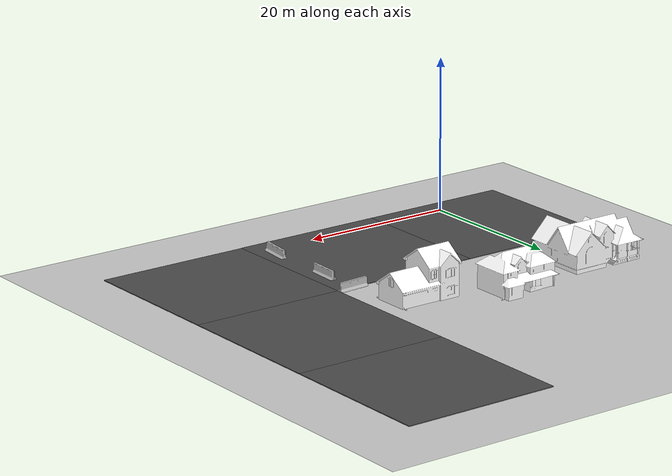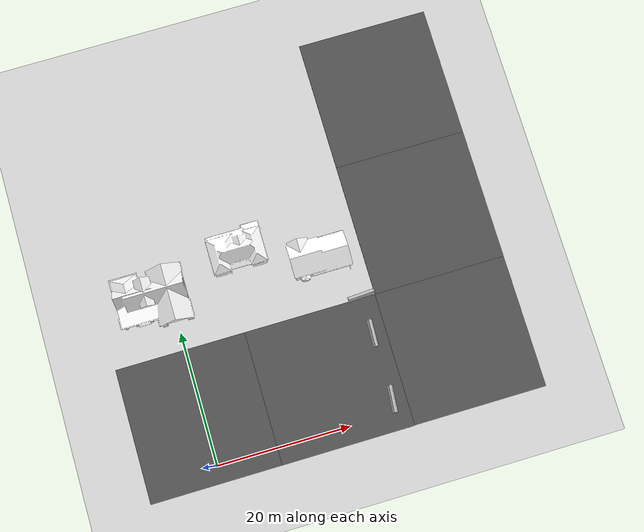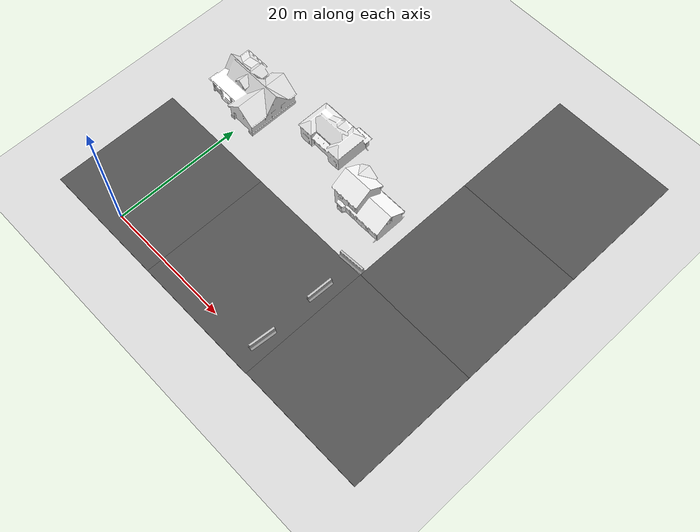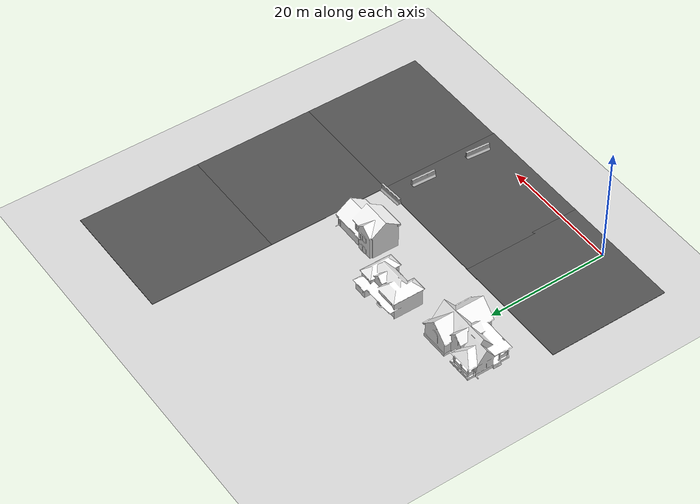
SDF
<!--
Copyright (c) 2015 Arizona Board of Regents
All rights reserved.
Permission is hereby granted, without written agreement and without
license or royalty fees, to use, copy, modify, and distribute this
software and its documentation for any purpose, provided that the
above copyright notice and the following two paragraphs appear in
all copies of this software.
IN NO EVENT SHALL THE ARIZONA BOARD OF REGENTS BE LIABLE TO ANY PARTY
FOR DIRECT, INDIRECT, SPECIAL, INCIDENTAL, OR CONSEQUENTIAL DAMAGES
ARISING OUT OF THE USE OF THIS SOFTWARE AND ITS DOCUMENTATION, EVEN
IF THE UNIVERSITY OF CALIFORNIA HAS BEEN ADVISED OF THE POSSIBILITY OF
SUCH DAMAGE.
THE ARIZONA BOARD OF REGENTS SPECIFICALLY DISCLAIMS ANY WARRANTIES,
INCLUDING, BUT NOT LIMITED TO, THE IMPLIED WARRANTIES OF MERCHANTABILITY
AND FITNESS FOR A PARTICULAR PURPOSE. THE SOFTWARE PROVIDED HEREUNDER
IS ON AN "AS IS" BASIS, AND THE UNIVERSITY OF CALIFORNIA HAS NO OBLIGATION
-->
<sdf version="1.4">
 <world name="default">
  <model name="ground_plane">
   <static>1</static>
   <link name="link">
    <collision name="collision">
     <geometry><plane><normal>0 0 1</normal><size>100 100</size></plane></geometry>
     <surface><friction><ode><mu>100</mu><mu2>50</mu2></ode></friction></surface>
    </collision>
    <visual name="visual">
     <cast_shadows>0</cast_shadows>
     <geometry><plane><normal>0 0 1</normal><size>100 100</size></plane></geometry>
     <material>
      <script><uri>file://media/materials/scripts/gazebo.material</uri><name>Gazebo/Grey</name></script>
     </material>
    </visual>
    <velocity_decay><linear>0</linear><angular>0</angular></velocity_decay>
   </link>
  </model>
  <light name="sun" type="directional">
   <pose>0 0 10 0 -0 0</pose>
   <diffuse>0.8 0.8 0.8 1</diffuse>
   <specular>0.2 0.2 0.2 1</specular>
   <attenuation>
    <range>1000</range>
    <constant>0.9</constant>
    <linear>0.01</linear>
    <quadratic>0.001</quadratic>
   </attenuation>
   <direction>-0.5 0.1 -0.9</direction>
  </light>
  <physics type="ode">
   <max_step_size>0.001</max_step_size>
   <real_time_factor>1</real_time_factor>
   <real_time_update_rate>1000</real_time_update_rate>
   <gravity>0 0 -9.8</gravity>
  </physics>
  <scene><ambient>0.4 0.4 0.4 1</ambient><background>0.7 0.7 0.7 1</background><shadows>1</shadows></scene>
  <spherical_coordinates>
   <surface_model>EARTH_WGS84</surface_model>
   <latitude_deg>0</latitude_deg>
   <longitude_deg>0</longitude_deg>
   <elevation>0</elevation>
   <heading_deg>0</heading_deg>
  </spherical_coordinates>
  <model name="asphalt_plane_3">
   <static>1</static>
   <link name="link">
    <collision name="collision"><geometry><box><size>20 20 0.1</size></box></geometry></collision>
    <visual name="visual">
     <cast_shadows>0</cast_shadows>
     <geometry><box><size>20 20 0.1</size></box></geometry>
     <material>
      <script>
       <uri>model://asphalt_plane/materials/scripts</uri>
       <uri>model://asphalt_plane/materials/textures</uri>
       <name>vrc/asphalt</name>
      </script>
     </material>
    </visual>
    <velocity_decay><linear>0</linear><angular>0</angular></velocity_decay>
   </link>
   <pose>-0.579832 7.43849 0 0 -0 0</pose>
  </model>
  <model name="asphalt_plane_4">
   <static>1</static>
   <link name="link">
    <collision name="collision"><geometry><box><size>20 20 0.1</size></box></geometry></collision>
    <visual name="visual">
     <cast_shadows>0</cast_shadows>
     <geometry><box><size>20 20 0.1</size></box></geometry>
     <material>
      <script>
       <uri>model://asphalt_plane/materials/scripts</uri>
       <uri>model://asphalt_plane/materials/textures</uri>
       <name>vrc/asphalt</name>
      </script>
     </material>
    </visual>
    <velocity_decay><linear>0</linear><angular>0</angular></velocity_decay>
   </link>
   <pose>19 7.43486 0 0 -0 0</pose>
  </model>
  <model name="asphalt_plane_6">
   <static>1</static>
   <link name="link">
    <collision name="collision"><geometry><box><size>20 20 0.1</size></box></geometry></collision>
    <visual name="visual">
     <cast_shadows>0</cast_shadows>
     <geometry><box><size>20 20 0.1</size></box></geometry>
     <material>
      <script>
       <uri>model://asphalt_plane/materials/scripts</uri>
       <uri>model://asphalt_plane/materials/textures</uri>
       <name>vrc/asphalt</name>
      </script>
     </material>
    </visual>
    <velocity_decay><linear>0</linear><angular>0</angular></velocity_decay>
   </link>
   <pose>39 7.49528 0 0 -0 0</pose>
  </model>
  <model name="asphalt_plane_7">
   <static>1</static>
   <link name="link">
    <collision name="collision"><geometry><box><size>20 20 0.1</size></box></geometry></collision>
    <visual name="visual">
     <cast_shadows>0</cast_shadows>
     <geometry><box><size>20 20 0.1</size></box></geometry>
     <material>
      <script>
       <uri>model://asphalt_plane/materials/scripts</uri>
       <uri>model://asphalt_plane/materials/textures</uri>
       <name>vrc/asphalt</name>
      </script>
     </material>
    </visual>
    <velocity_decay><linear>0</linear><angular>0</angular></velocity_decay>
   </link>
   <pose>39 27.4494 0 0 -0 0</pose>
  </model>
  <model name="asphalt_plane_9">
   <static>1</static>
   <link name="link">
    <collision name="collision"><geometry><box><size>20 20 0.1</size></box></geometry></collision>
    <visual name="visual">
     <cast_shadows>0</cast_shadows>
     <geometry><box><size>20 20 0.1</size></box></geometry>
     <material>
      <script>
       <uri>model://asphalt_plane/materials/scripts</uri>
       <uri>model://asphalt_plane/materials/textures</uri>
       <name>vrc/asphalt</name>
      </script>
     </material>
    </visual>
    <velocity_decay><linear>0</linear><angular>0</angular></velocity_decay>
   </link>
   <pose>39 47.4433 0 0 -0 0</pose>
  </model>
  <model name="House 1">
   <static>1</static>
   <link name="link">
    <collision name="collision">
     <geometry><mesh><uri>model://house_1/meshes/house_1.dae</uri></mesh></geometry>
    </collision>
    <visual name="visual">
     <geometry><mesh><uri>model://house_1/meshes/house_1.dae</uri></mesh></geometry>
     <material>
      <script>
       <uri>model://house_1/materials/scripts</uri>
       <uri>model://house_1/materials/textures</uri>
       <name>House_1/Diffuse</name>
      </script>
      <shader type="normal_map_object_space"><normal_map>House_1_Normal.png</normal_map></shader>
     </material>
    </visual>
    <velocity_decay><linear>0</linear><angular>0</angular></velocity_decay>
   </link>
   <pose>-2.40435 26 0 0 -0 0</pose>
  </model>
  <model name="House 2">
   <static>1</static>
   <link name="link">
    <collision name="collision">
     <geometry><mesh><uri>model://house_2/meshes/house_2.dae</uri></mesh></geometry>
    </collision>
    <visual name="visual">
     <geometry><mesh><uri>model://house_2/meshes/house_2.dae</uri></mesh></geometry>
     <material>
      <script>
       <uri>model://house_2/materials/scripts</uri>
       <uri>model://house_2/materials/textures</uri>
       <uri>model://house_1/materials/textures</uri>
       <name>House_2/Diffuse</name>
      </script>
      <shader type="normal_map_object_space">
       <normal_map>model://house_1/materials/textures/House_1_Normal.png</normal_map>
      </shader>
     </material>
    </visual>
    <velocity_decay><linear>0</linear><angular>0</angular></velocity_decay>
   </link>
   <pose>10.586 29 0 0 -0 0</pose>
  </model>
  <model name="House 3">
   <static>1</static>
   <link name="link">
    <collision name="collision">
     <geometry><mesh><uri>model://house_3/meshes/house_3.dae</uri></mesh></geometry>
    </collision>
    <visual name="visual">
     <geometry><mesh><uri>model://house_3/meshes/house_3.dae</uri></mesh></geometry>
     <material>
      <script>
       <uri>model://house_3/materials/scripts</uri>
       <uri>model://house_3/materials/textures</uri>
       <uri>model://house_1/materials/textures</uri>
       <name>House_3/Diffuse</name>
      </script>
      <shader type="normal_map_object_space">
       <normal_map>model://house_1/materials/textures/House_1_Normal.png</normal_map>
      </shader>
     </material>
    </visual>
    <velocity_decay><linear>0</linear><angular>0</angular></velocity_decay>
   </link>
   <pose>23 25 0 0 -0 0</pose>
  </model>
  <model name="jersey_barrier">
   <static>1</static>
   <link name="link">
    <visual name="visual">
     <geometry><mesh><uri>model://jersey_barrier/meshes/jersey_barrier.dae</uri></mesh></geometry>
    </visual>
    <collision name="upright">
     <pose>0 0 0.5715 0 -0 0</pose>
     <geometry><box><size>4.06542 0.3063 1.143</size></box></geometry>
    </collision>
    <collision name="base">
     <pose>0 0 0.032258 0 -0 0</pose>
     <geometry><box><size>4.06542 0.8107 0.064516</size></box></geometry>
    </collision>
    <collision name="base2">
     <pose>0 0 0.1 0 -0 0</pose>
     <geometry><box><size>4.06542 0.65 0.1</size></box></geometry>
    </collision>
    <collision name="base3">
     <pose>0 0 0.2 0 -0 0</pose>
     <geometry><box><size>4.06542 0.5 0.1</size></box></geometry>
    </collision>
    <collision name="left-angle">
     <pose>0 -0.224 0.2401 0.9 -0 0</pose>
     <geometry><box><size>4.06542 0.5 0.064516</size></box></geometry>
    </collision>
    <collision name="right-angle">
     <pose>0 0.224 0.2401 -0.9 0 0</pose>
     <geometry><box><size>4.06542 0.5 0.064516</size></box></geometry>
    </collision>
    <velocity_decay><linear>0</linear><angular>0</angular></velocity_decay>
   </link>
   <pose>27 17.8342 0 0 0 -3.08258</pose>
  </model>
  <model name="jersey_barrier_0">
   <static>1</static>
   <link name="link">
    <visual name="visual">
     <geometry><mesh><uri>model://jersey_barrier/meshes/jersey_barrier.dae</uri></mesh></geometry>
    </visual>
    <collision name="upright">
     <pose>0 0 0.5715 0 -0 0</pose>
     <geometry><box><size>4.06542 0.3063 1.143</size></box></geometry>
    </collision>
    <collision name="base">
     <pose>0 0 0.032258 0 -0 0</pose>
     <geometry><box><size>4.06542 0.8107 0.064516</size></box></geometry>
    </collision>
    <collision name="base2">
     <pose>0 0 0.1 0 -0 0</pose>
     <geometry><box><size>4.06542 0.65 0.1</size></box></geometry>
    </collision>
    <collision name="base3">
     <pose>0 0 0.2 0 -0 0</pose>
     <geometry><box><size>4.06542 0.5 0.1</size></box></geometry>
    </collision>
    <collision name="left-angle">
     <pose>0 -0.224 0.2401 0.9 -0 0</pose>
     <geometry><box><size>4.06542 0.5 0.064516</size></box></geometry>
    </collision>
    <collision name="right-angle">
     <pose>0 0.224 0.2401 -0.9 0 0</pose>
     <geometry><box><size>4.06542 0.5 0.064516</size></box></geometry>
    </collision>
    <velocity_decay><linear>0</linear><angular>0</angular></velocity_decay>
   </link>
   <pose>27 12 0 0.024381 -0.009147 1.53118</pose>
  </model>
  <model name="jersey_barrier_1">
   <static>1</static>
   <link name="link">
    <visual name="visual">
     <geometry><mesh><uri>model://jersey_barrier/meshes/jersey_barrier.dae</uri></mesh></geometry>
    </visual>
    <collision name="upright">
     <pose>0 0 0.5715 0 -0 0</pose>
     <geometry><box><size>4.06542 0.3063 1.143</size></box></geometry>
    </collision>
    <collision name="base">
     <pose>0 0 0.032258 0 -0 0</pose>
     <geometry><box><size>4.06542 0.8107 0.064516</size></box></geometry>
    </collision>
    <collision name="base2">
     <pose>0 0 0.1 0 -0 0</pose>
     <geometry><box><size>4.06542 0.65 0.1</size></box></geometry>
    </collision>
    <collision name="base3">
     <pose>0 0 0.2 0 -0 0</pose>
     <geometry><box><size>4.06542 0.5 0.1</size></box></geometry>
    </collision>
    <collision name="left-angle">
     <pose>0 -0.224 0.2401 0.9 -0 0</pose>
     <geometry><box><size>4.06542 0.5 0.064516</size></box></geometry>
    </collision>
    <collision name="right-angle">
     <pose>0 0.224 0.2401 -0.9 0 0</pose>
     <geometry><box><size>4.06542 0.5 0.064516</size></box></geometry>
    </collision>
    <velocity_decay><linear>0</linear><angular>0</angular></velocity_decay>
   </link>
   <pose>27 2 0 -0.006911 0.012543 1.48507</pose>
  </model>
 </world>
</sdf>
